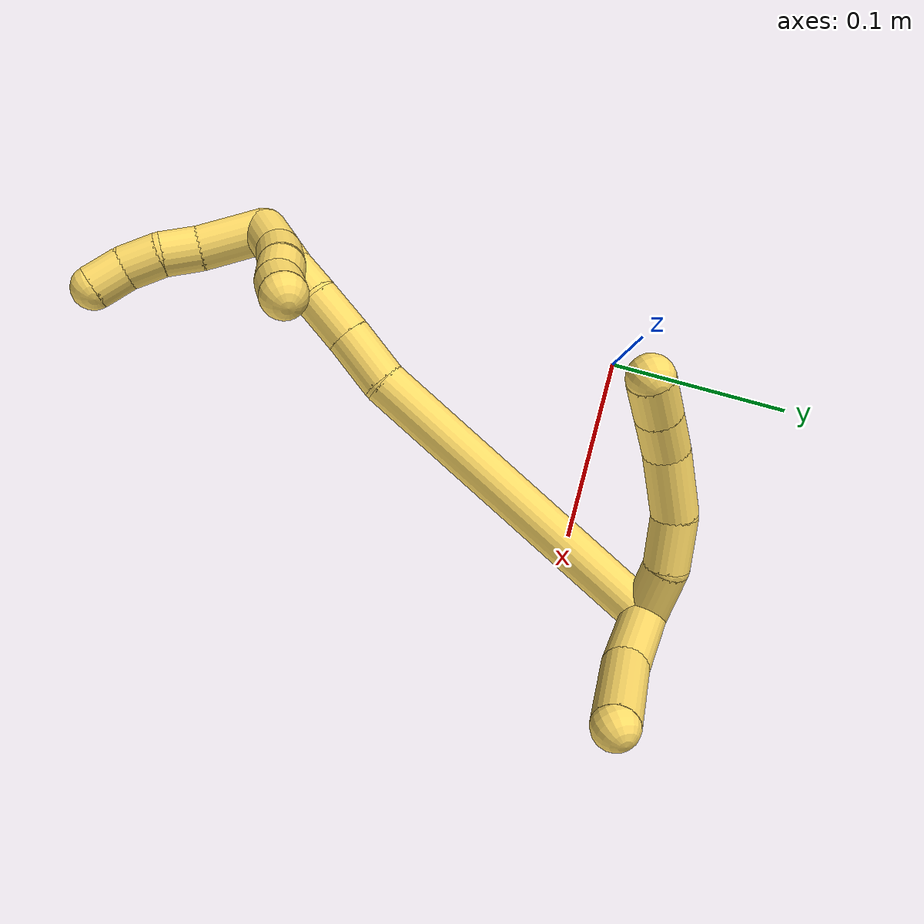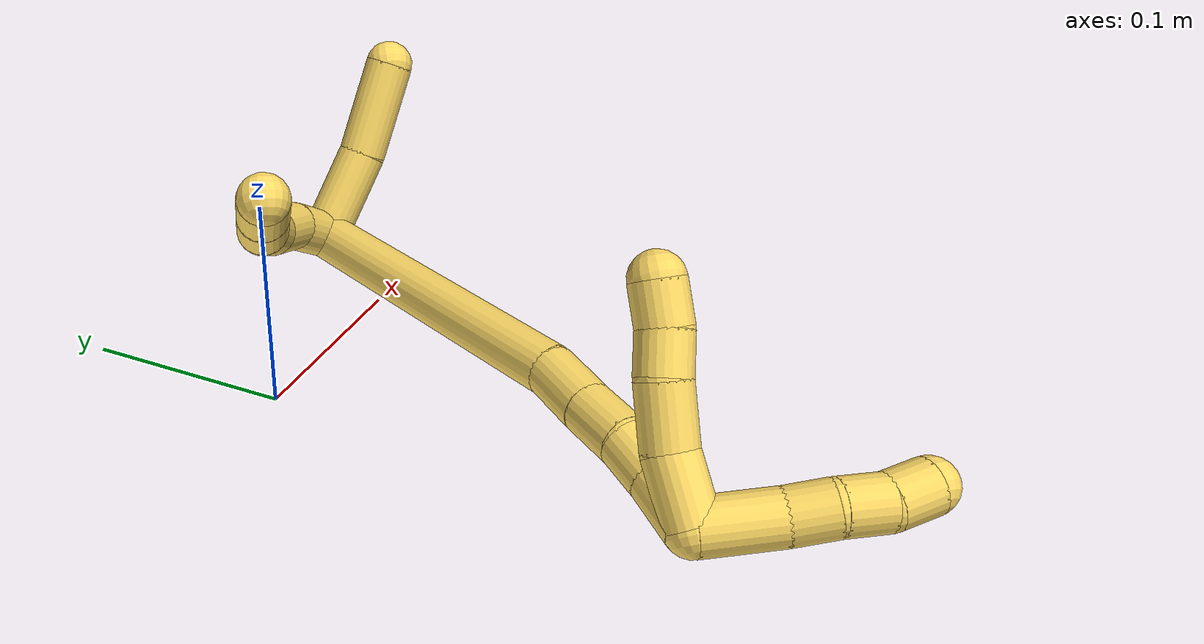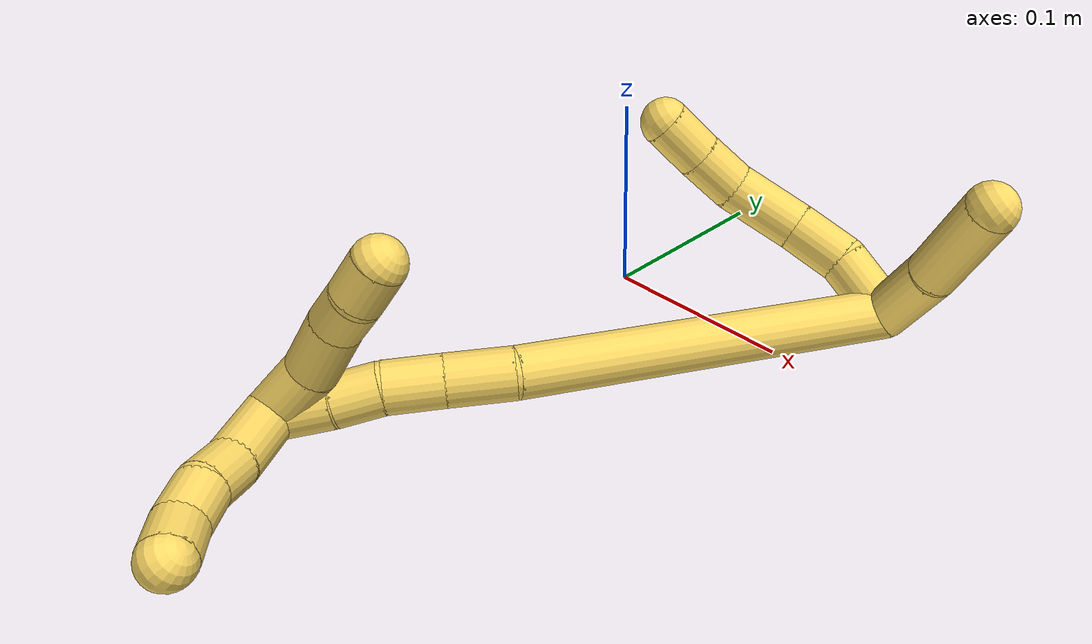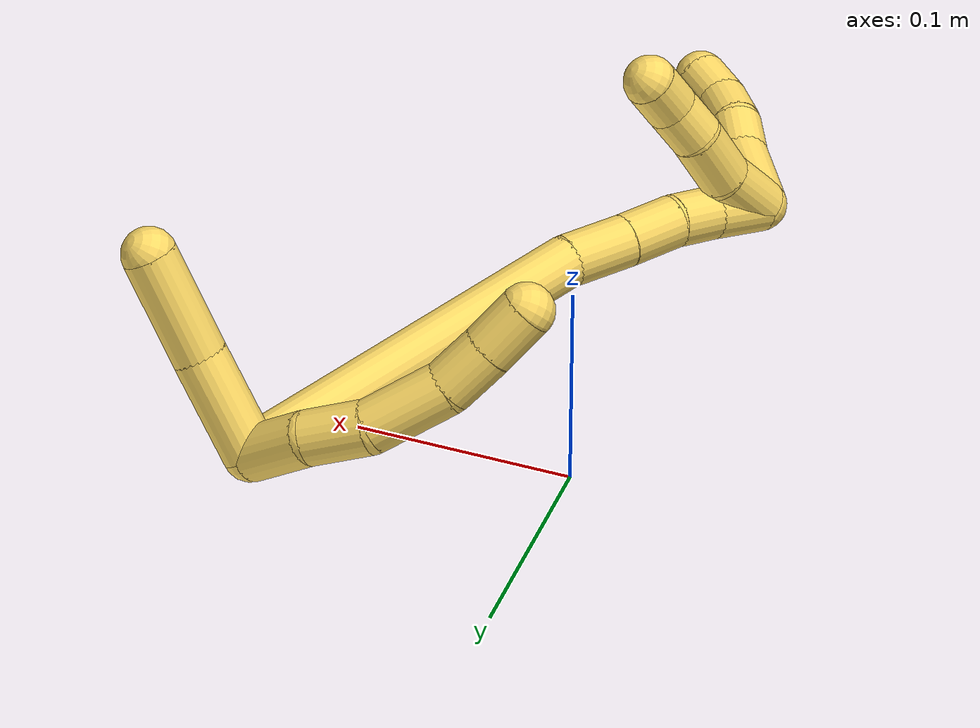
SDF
<sdf version="1.7">
 <world name="default">
  <model name="5">
   <static>0</static>
   <link name="5">
    <collision name="collision-cylinder-e_1_2_8">
     <pose>-0.016672 0.001153 -0.00145 -2.46978 -1.46012 2.39773</pose>
     <geometry><cylinder><radius>0.0125</radius><length>0.033548</length></cylinder></geometry>
     <surface>
      <friction><ode><mu>1.16</mu><mu2>1.16</mu2><slip1>0</slip1><slip2>0</slip2></ode></friction>
      <contact><ode><kp>1e+06</kp><kd>1</kd><max_vel>0</max_vel><min_depth>0.001</min_depth></ode></contact>
     </surface>
    </collision>
    <visual name="visual-cylinder-e_1_2_8">
     <pose>-0.016672 0.001153 -0.00145 -2.46978 -1.46012 2.39773</pose>
     <geometry><cylinder><radius>0.0125</radius><length>0.033548</length></cylinder></geometry>
     <material><ambient>1 0.858824 0.4 1</ambient></material>
    </visual>
    <collision name="collision-cylinder-e_2_8_9">
     <pose>-0.0472 0.001958 -0.008203 3.07613 -1.20457 -3.04641</pose>
     <geometry><cylinder><radius>0.0125</radius><length>0.029683</length></cylinder></geometry>
     <surface>
      <friction><ode><mu>1.16</mu><mu2>1.16</mu2><slip1>0</slip1><slip2>0</slip2></ode></friction>
      <contact><ode><kp>1e+06</kp><kd>1</kd><max_vel>0</max_vel><min_depth>0.001</min_depth></ode></contact>
     </surface>
    </collision>
    <visual name="visual-cylinder-e_2_8_9">
     <pose>-0.0472 0.001958 -0.008203 3.07613 -1.20457 -3.04641</pose>
     <geometry><cylinder><radius>0.0125</radius><length>0.029683</length></cylinder></geometry>
     <material><ambient>1 0.858824 0.4 1</ambient></material>
    </visual>
    <collision name="collision-cylinder-e_3_9_10">
     <pose>-0.078005 -0.004856 -0.019312 2.30238 -1.097 -1.88035</pose>
     <geometry><cylinder><radius>0.0125</radius><length>0.038092</length></cylinder></geometry>
     <surface>
      <friction><ode><mu>1.16</mu><mu2>1.16</mu2><slip1>0</slip1><slip2>0</slip2></ode></friction>
      <contact><ode><kp>1e+06</kp><kd>1</kd><max_vel>0</max_vel><min_depth>0.001</min_depth></ode></contact>
     </surface>
    </collision>
    <visual name="visual-cylinder-e_3_9_10">
     <pose>-0.078005 -0.004856 -0.019312 2.30238 -1.097 -1.88035</pose>
     <geometry><cylinder><radius>0.0125</radius><length>0.038092</length></cylinder></geometry>
     <material><ambient>1 0.858824 0.4 1</ambient></material>
    </visual>
    <collision name="collision-cylinder-e_4_10_11">
     <pose>-0.105591 -0.017262 -0.026244 1.75836 -1.05398 -1.22508</pose>
     <geometry><cylinder><radius>0.0125</radius><length>0.024471</length></cylinder></geometry>
     <surface>
      <friction><ode><mu>1.16</mu><mu2>1.16</mu2><slip1>0</slip1><slip2>0</slip2></ode></friction>
      <contact><ode><kp>1e+06</kp><kd>1</kd><max_vel>0</max_vel><min_depth>0.001</min_depth></ode></contact>
     </surface>
    </collision>
    <visual name="visual-cylinder-e_4_10_11">
     <pose>-0.105591 -0.017262 -0.026244 1.75836 -1.05398 -1.22508</pose>
     <geometry><cylinder><radius>0.0125</radius><length>0.024471</length></cylinder></geometry>
     <material><ambient>1 0.858824 0.4 1</ambient></material>
    </visual>
    <collision name="collision-cylinder-e_5_11_6">
     <pose>-0.126686 -0.029272 -0.027891 1.65609 -1.04321 -1.11853</pose>
     <geometry><cylinder><radius>0.0125</radius><length>0.024206</length></cylinder></geometry>
     <surface>
      <friction><ode><mu>1.16</mu><mu2>1.16</mu2><slip1>0</slip1><slip2>0</slip2></ode></friction>
      <contact><ode><kp>1e+06</kp><kd>1</kd><max_vel>0</max_vel><min_depth>0.001</min_depth></ode></contact>
     </surface>
    </collision>
    <visual name="visual-cylinder-e_5_11_6">
     <pose>-0.126686 -0.029272 -0.027891 1.65609 -1.04321 -1.11853</pose>
     <geometry><cylinder><radius>0.0125</radius><length>0.024206</length></cylinder></geometry>
     <material><ambient>1 0.858824 0.4 1</ambient></material>
    </visual>
    <collision name="collision-cylinder-e_1_2_12">
     <pose>-0.001969 -0.015327 0.019028 0.678107 -0.080395 -0.028366</pose>
     <geometry><cylinder><radius>0.0125</radius><length>0.049025</length></cylinder></geometry>
     <surface>
      <friction><ode><mu>1.16</mu><mu2>1.16</mu2><slip1>0</slip1><slip2>0</slip2></ode></friction>
      <contact><ode><kp>1e+06</kp><kd>1</kd><max_vel>0</max_vel><min_depth>0.001</min_depth></ode></contact>
     </surface>
    </collision>
    <visual name="visual-cylinder-e_1_2_12">
     <pose>-0.001969 -0.015327 0.019028 0.678107 -0.080395 -0.028366</pose>
     <geometry><cylinder><radius>0.0125</radius><length>0.049025</length></cylinder></geometry>
     <material><ambient>1 0.858824 0.4 1</ambient></material>
    </visual>
    <collision name="collision-cylinder-e_2_12_5">
     <pose>-0.008603 -0.044479 0.058953 0.584433 -0.184088 -0.055522</pose>
     <geometry><cylinder><radius>0.0125</radius><length>0.050975</length></cylinder></geometry>
     <surface>
      <friction><ode><mu>1.16</mu><mu2>1.16</mu2><slip1>0</slip1><slip2>0</slip2></ode></friction>
      <contact><ode><kp>1e+06</kp><kd>1</kd><max_vel>0</max_vel><min_depth>0.001</min_depth></ode></contact>
     </surface>
    </collision>
    <visual name="visual-cylinder-e_2_12_5">
     <pose>-0.008603 -0.044479 0.058953 0.584433 -0.184088 -0.055522</pose>
     <geometry><cylinder><radius>0.0125</radius><length>0.050975</length></cylinder></geometry>
     <material><ambient>1 0.858824 0.4 1</ambient></material>
    </visual>
    <collision name="collision-cylinder-e_1_2_13">
     <pose>-0.033154 -0.065895 -0.059872 2.30834 -0.356475 -0.773203</pose>
     <geometry><cylinder><radius>0.0125</radius><length>0.190012</length></cylinder></geometry>
     <surface>
      <friction><ode><mu>1.16</mu><mu2>1.16</mu2><slip1>0</slip1><slip2>0</slip2></ode></friction>
      <contact><ode><kp>1e+06</kp><kd>1</kd><max_vel>0</max_vel><min_depth>0.001</min_depth></ode></contact>
     </surface>
    </collision>
    <visual name="visual-cylinder-e_1_2_13">
     <pose>-0.033154 -0.065895 -0.059872 2.30834 -0.356475 -0.773203</pose>
     <geometry><cylinder><radius>0.0125</radius><length>0.190012</length></cylinder></geometry>
     <material><ambient>1 0.858824 0.4 1</ambient></material>
    </visual>
    <collision name="collision-cylinder-e_2_13_14">
     <pose>-0.073118 -0.140391 -0.131292 2.50143 -0.441764 -1.1908</pose>
     <geometry><cylinder><radius>0.0125</radius><length>0.031854</length></cylinder></geometry>
     <surface>
      <friction><ode><mu>1.16</mu><mu2>1.16</mu2><slip1>0</slip1><slip2>0</slip2></ode></friction>
      <contact><ode><kp>1e+06</kp><kd>1</kd><max_vel>0</max_vel><min_depth>0.001</min_depth></ode></contact>
     </surface>
    </collision>
    <visual name="visual-cylinder-e_2_13_14">
     <pose>-0.073118 -0.140391 -0.131292 2.50143 -0.441764 -1.1908</pose>
     <geometry><cylinder><radius>0.0125</radius><length>0.031854</length></cylinder></geometry>
     <material><ambient>1 0.858824 0.4 1</ambient></material>
    </visual>
    <collision name="collision-cylinder-e_3_14_15">
     <pose>-0.085658 -0.156952 -0.152622 2.45858 -0.426443 -1.09424</pose>
     <geometry><cylinder><radius>0.0125</radius><length>0.027706</length></cylinder></geometry>
     <surface>
      <friction><ode><mu>1.16</mu><mu2>1.16</mu2><slip1>0</slip1><slip2>0</slip2></ode></friction>
      <contact><ode><kp>1e+06</kp><kd>1</kd><max_vel>0</max_vel><min_depth>0.001</min_depth></ode></contact>
     </surface>
    </collision>
    <visual name="visual-cylinder-e_3_14_15">
     <pose>-0.085658 -0.156952 -0.152622 2.45858 -0.426443 -1.09424</pose>
     <geometry><cylinder><radius>0.0125</radius><length>0.027706</length></cylinder></geometry>
     <material><ambient>1 0.858824 0.4 1</ambient></material>
    </visual>
    <collision name="collision-cylinder-e_4_15_16">
     <pose>-0.094602 -0.170493 -0.171556 2.59389 -0.291277 -0.962427</pose>
     <geometry><cylinder><radius>0.0125</radius><length>0.02238</length></cylinder></geometry>
     <surface>
      <friction><ode><mu>1.16</mu><mu2>1.16</mu2><slip1>0</slip1><slip2>0</slip2></ode></friction>
      <contact><ode><kp>1e+06</kp><kd>1</kd><max_vel>0</max_vel><min_depth>0.001</min_depth></ode></contact>
     </surface>
    </collision>
    <visual name="visual-cylinder-e_4_15_16">
     <pose>-0.094602 -0.170493 -0.171556 2.59389 -0.291277 -0.962427</pose>
     <geometry><cylinder><radius>0.0125</radius><length>0.02238</length></cylinder></geometry>
     <material><ambient>1 0.858824 0.4 1</ambient></material>
    </visual>
    <collision name="collision-cylinder-e_5_16_1">
     <pose>-0.102882 -0.182209 -0.192255 2.65329 -0.369651 -1.2876</pose>
     <geometry><cylinder><radius>0.0125</radius><length>0.028048</length></cylinder></geometry>
     <surface>
      <friction><ode><mu>1.16</mu><mu2>1.16</mu2><slip1>0</slip1><slip2>0</slip2></ode></friction>
      <contact><ode><kp>1e+06</kp><kd>1</kd><max_vel>0</max_vel><min_depth>0.001</min_depth></ode></contact>
     </surface>
    </collision>
    <visual name="visual-cylinder-e_5_16_1">
     <pose>-0.102882 -0.182209 -0.192255 2.65329 -0.369651 -1.2876</pose>
     <geometry><cylinder><radius>0.0125</radius><length>0.028048</length></cylinder></geometry>
     <material><ambient>1 0.858824 0.4 1</ambient></material>
    </visual>
    <collision name="collision-cylinder-e_1_1_17">
     <pose>-0.100565 -0.205397 -0.20465 1.62038 0.408155 0.428298</pose>
     <geometry><cylinder><radius>0.0125</radius><length>0.037205</length></cylinder></geometry>
     <surface>
      <friction><ode><mu>1.16</mu><mu2>1.16</mu2><slip1>0</slip1><slip2>0</slip2></ode></friction>
      <contact><ode><kp>1e+06</kp><kd>1</kd><max_vel>0</max_vel><min_depth>0.001</min_depth></ode></contact>
     </surface>
    </collision>
    <visual name="visual-cylinder-e_1_1_17">
     <pose>-0.100565 -0.205397 -0.20465 1.62038 0.408155 0.428298</pose>
     <geometry><cylinder><radius>0.0125</radius><length>0.037205</length></cylinder></geometry>
     <material><ambient>1 0.858824 0.4 1</ambient></material>
    </visual>
    <collision name="collision-cylinder-e_2_17_18">
     <pose>-0.090513 -0.232647 -0.205543 1.57535 0.25591 0.257065</pose>
     <geometry><cylinder><radius>0.0125</radius><length>0.021079</length></cylinder></geometry>
     <surface>
      <friction><ode><mu>1.16</mu><mu2>1.16</mu2><slip1>0</slip1><slip2>0</slip2></ode></friction>
      <contact><ode><kp>1e+06</kp><kd>1</kd><max_vel>0</max_vel><min_depth>0.001</min_depth></ode></contact>
     </surface>
    </collision>
    <visual name="visual-cylinder-e_2_17_18">
     <pose>-0.090513 -0.232647 -0.205543 1.57535 0.25591 0.257065</pose>
     <geometry><cylinder><radius>0.0125</radius><length>0.021079</length></cylinder></geometry>
     <material><ambient>1 0.858824 0.4 1</ambient></material>
    </visual>
    <collision name="collision-cylinder-e_3_18_19">
     <pose>-0.082622 -0.252053 -0.206088 1.62492 0.515292 0.542611</pose>
     <geometry><cylinder><radius>0.0125</radius><length>0.021201</length></cylinder></geometry>
     <surface>
      <friction><ode><mu>1.16</mu><mu2>1.16</mu2><slip1>0</slip1><slip2>0</slip2></ode></friction>
      <contact><ode><kp>1e+06</kp><kd>1</kd><max_vel>0</max_vel><min_depth>0.001</min_depth></ode></contact>
     </surface>
    </collision>
    <visual name="visual-cylinder-e_3_18_19">
     <pose>-0.082622 -0.252053 -0.206088 1.62492 0.515292 0.542611</pose>
     <geometry><cylinder><radius>0.0125</radius><length>0.021201</length></cylinder></geometry>
     <material><ambient>1 0.858824 0.4 1</ambient></material>
    </visual>
    <collision name="collision-cylinder-e_4_19_4">
     <pose>-0.071883 -0.269685 -0.204615 1.34078 0.567629 0.454561</pose>
     <geometry><cylinder><radius>0.0125</radius><length>0.020516</length></cylinder></geometry>
     <surface>
      <friction><ode><mu>1.16</mu><mu2>1.16</mu2><slip1>0</slip1><slip2>0</slip2></ode></friction>
      <contact><ode><kp>1e+06</kp><kd>1</kd><max_vel>0</max_vel><min_depth>0.001</min_depth></ode></contact>
     </surface>
    </collision>
    <visual name="visual-cylinder-e_4_19_4">
     <pose>-0.071883 -0.269685 -0.204615 1.34078 0.567629 0.454561</pose>
     <geometry><cylinder><radius>0.0125</radius><length>0.020516</length></cylinder></geometry>
     <material><ambient>1 0.858824 0.4 1</ambient></material>
    </visual>
    <collision name="collision-cylinder-e_1_1_20">
     <pose>-0.110116 -0.187584 -0.188656 -0.050117 -0.141949 0.003564</pose>
     <geometry><cylinder><radius>0.0125</radius><length>0.030642</length></cylinder></geometry>
     <surface>
      <friction><ode><mu>1.16</mu><mu2>1.16</mu2><slip1>0</slip1><slip2>0</slip2></ode></friction>
      <contact><ode><kp>1e+06</kp><kd>1</kd><max_vel>0</max_vel><min_depth>0.001</min_depth></ode></contact>
     </surface>
    </collision>
    <visual name="visual-cylinder-e_1_1_20">
     <pose>-0.110116 -0.187584 -0.188656 -0.050117 -0.141949 0.003564</pose>
     <geometry><cylinder><radius>0.0125</radius><length>0.030642</length></cylinder></geometry>
     <material><ambient>1 0.858824 0.4 1</ambient></material>
    </visual>
    <collision name="collision-cylinder-e_2_20_21">
     <pose>-0.115965 -0.18929 -0.159545 0.174787 -0.254027 -0.022376</pose>
     <geometry><cylinder><radius>0.0125</radius><length>0.029299</length></cylinder></geometry>
     <surface>
      <friction><ode><mu>1.16</mu><mu2>1.16</mu2><slip1>0</slip1><slip2>0</slip2></ode></friction>
      <contact><ode><kp>1e+06</kp><kd>1</kd><max_vel>0</max_vel><min_depth>0.001</min_depth></ode></contact>
     </surface>
    </collision>
    <visual name="visual-cylinder-e_2_20_21">
     <pose>-0.115965 -0.18929 -0.159545 0.174787 -0.254027 -0.022376</pose>
     <geometry><cylinder><radius>0.0125</radius><length>0.029299</length></cylinder></geometry>
     <material><ambient>1 0.858824 0.4 1</ambient></material>
    </visual>
    <collision name="collision-cylinder-e_3_21_22">
     <pose>-0.120558 -0.194388 -0.135951 0.266778 -0.091067 -0.012228</pose>
     <geometry><cylinder><radius>0.0125</radius><length>0.020052</length></cylinder></geometry>
     <surface>
      <friction><ode><mu>1.16</mu><mu2>1.16</mu2><slip1>0</slip1><slip2>0</slip2></ode></friction>
      <contact><ode><kp>1e+06</kp><kd>1</kd><max_vel>0</max_vel><min_depth>0.001</min_depth></ode></contact>
     </surface>
    </collision>
    <visual name="visual-cylinder-e_3_21_22">
     <pose>-0.120558 -0.194388 -0.135951 0.266778 -0.091067 -0.012228</pose>
     <geometry><cylinder><radius>0.0125</radius><length>0.020052</length></cylinder></geometry>
     <material><ambient>1 0.858824 0.4 1</ambient></material>
    </visual>
    <collision name="collision-cylinder-e_4_22_3">
     <pose>-0.123661 -0.197995 -0.116607 0.100065 -0.220814 -0.011102</pose>
     <geometry><cylinder><radius>0.0125</radius><length>0.020008</length></cylinder></geometry>
     <surface>
      <friction><ode><mu>1.16</mu><mu2>1.16</mu2><slip1>0</slip1><slip2>0</slip2></ode></friction>
      <contact><ode><kp>1e+06</kp><kd>1</kd><max_vel>0</max_vel><min_depth>0.001</min_depth></ode></contact>
     </surface>
    </collision>
    <visual name="visual-cylinder-e_4_22_3">
     <pose>-0.123661 -0.197995 -0.116607 0.100065 -0.220814 -0.011102</pose>
     <geometry><cylinder><radius>0.0125</radius><length>0.020008</length></cylinder></geometry>
     <material><ambient>1 0.858824 0.4 1</ambient></material>
    </visual>
    <collision name="collision-sphere-3">
     <pose>-0.125852 -0.19897 -0.106895 0 -0 0</pose>
     <geometry><sphere><radius>0.0125</radius></sphere></geometry>
     <surface>
      <friction><ode><mu>1.16</mu><mu2>1.16</mu2><slip1>0</slip1><slip2>0</slip2></ode></friction>
      <contact><ode><kp>1e+06</kp><kd>1</kd><max_vel>0</max_vel><min_depth>0.001</min_depth></ode></contact>
     </surface>
    </collision>
    <visual name="visual-sphere-3">
     <pose>-0.125852 -0.19897 -0.106895 0 -0 0</pose>
     <geometry><sphere><radius>0.0125</radius></sphere></geometry>
     <material><ambient>1 0.858824 0.4 1</ambient></material>
    </visual>
    <collision name="collision-sphere-22">
     <pose>-0.12147 -0.19702 -0.12632 0 -0 0</pose>
     <geometry><sphere><radius>0.0125</radius></sphere></geometry>
     <surface>
      <friction><ode><mu>1.16</mu><mu2>1.16</mu2><slip1>0</slip1><slip2>0</slip2></ode></friction>
      <contact><ode><kp>1e+06</kp><kd>1</kd><max_vel>0</max_vel><min_depth>0.001</min_depth></ode></contact>
     </surface>
    </collision>
    <visual name="visual-sphere-22">
     <pose>-0.12147 -0.19702 -0.12632 0 -0 0</pose>
     <geometry><sphere><radius>0.0125</radius></sphere></geometry>
     <material><ambient>1 0.858824 0.4 1</ambient></material>
    </visual>
    <collision name="collision-sphere-21">
     <pose>-0.119646 -0.191756 -0.145582 0 -0 0</pose>
     <geometry><sphere><radius>0.0125</radius></sphere></geometry>
     <surface>
      <friction><ode><mu>1.16</mu><mu2>1.16</mu2><slip1>0</slip1><slip2>0</slip2></ode></friction>
      <contact><ode><kp>1e+06</kp><kd>1</kd><max_vel>0</max_vel><min_depth>0.001</min_depth></ode></contact>
     </surface>
    </collision>
    <visual name="visual-sphere-21">
     <pose>-0.119646 -0.191756 -0.145582 0 -0 0</pose>
     <geometry><sphere><radius>0.0125</radius></sphere></geometry>
     <material><ambient>1 0.858824 0.4 1</ambient></material>
    </visual>
    <collision name="collision-sphere-20">
     <pose>-0.112283 -0.186825 -0.173508 0 -0 0</pose>
     <geometry><sphere><radius>0.0125</radius></sphere></geometry>
     <surface>
      <friction><ode><mu>1.16</mu><mu2>1.16</mu2><slip1>0</slip1><slip2>0</slip2></ode></friction>
      <contact><ode><kp>1e+06</kp><kd>1</kd><max_vel>0</max_vel><min_depth>0.001</min_depth></ode></contact>
     </surface>
    </collision>
    <visual name="visual-sphere-20">
     <pose>-0.112283 -0.186825 -0.173508 0 -0 0</pose>
     <geometry><sphere><radius>0.0125</radius></sphere></geometry>
     <material><ambient>1 0.858824 0.4 1</ambient></material>
    </visual>
    <collision name="collision-sphere-4">
     <pose>-0.066368 -0.278106 -0.202643 0 -0 0</pose>
     <geometry><sphere><radius>0.0125</radius></sphere></geometry>
     <surface>
      <friction><ode><mu>1.16</mu><mu2>1.16</mu2><slip1>0</slip1><slip2>0</slip2></ode></friction>
      <contact><ode><kp>1e+06</kp><kd>1</kd><max_vel>0</max_vel><min_depth>0.001</min_depth></ode></contact>
     </surface>
    </collision>
    <visual name="visual-sphere-4">
     <pose>-0.066368 -0.278106 -0.202643 0 -0 0</pose>
     <geometry><sphere><radius>0.0125</radius></sphere></geometry>
     <material><ambient>1 0.858824 0.4 1</ambient></material>
    </visual>
    <collision name="collision-sphere-6">
     <pose>-0.137143 -0.035344 -0.02841 0 -0 0</pose>
     <geometry><sphere><radius>0.0125</radius></sphere></geometry>
     <surface>
      <friction><ode><mu>1.16</mu><mu2>1.16</mu2><slip1>0</slip1><slip2>0</slip2></ode></friction>
      <contact><ode><kp>1e+06</kp><kd>1</kd><max_vel>0</max_vel><min_depth>0.001</min_depth></ode></contact>
     </surface>
    </collision>
    <visual name="visual-sphere-6">
     <pose>-0.137143 -0.035344 -0.02841 0 -0 0</pose>
     <geometry><sphere><radius>0.0125</radius></sphere></geometry>
     <material><ambient>1 0.858824 0.4 1</ambient></material>
    </visual>
    <collision name="collision-sphere-11">
     <pose>-0.116228 -0.023201 -0.027372 0 -0 0</pose>
     <geometry><sphere><radius>0.0125</radius></sphere></geometry>
     <surface>
      <friction><ode><mu>1.16</mu><mu2>1.16</mu2><slip1>0</slip1><slip2>0</slip2></ode></friction>
      <contact><ode><kp>1e+06</kp><kd>1</kd><max_vel>0</max_vel><min_depth>0.001</min_depth></ode></contact>
     </surface>
    </collision>
    <visual name="visual-sphere-11">
     <pose>-0.116228 -0.023201 -0.027372 0 -0 0</pose>
     <geometry><sphere><radius>0.0125</radius></sphere></geometry>
     <material><ambient>1 0.858824 0.4 1</ambient></material>
    </visual>
    <collision name="collision-sphere-10">
     <pose>-0.094953 -0.011322 -0.025117 0 -0 0</pose>
     <geometry><sphere><radius>0.0125</radius></sphere></geometry>
     <surface>
      <friction><ode><mu>1.16</mu><mu2>1.16</mu2><slip1>0</slip1><slip2>0</slip2></ode></friction>
      <contact><ode><kp>1e+06</kp><kd>1</kd><max_vel>0</max_vel><min_depth>0.001</min_depth></ode></contact>
     </surface>
    </collision>
    <visual name="visual-sphere-10">
     <pose>-0.094953 -0.011322 -0.025117 0 -0 0</pose>
     <geometry><sphere><radius>0.0125</radius></sphere></geometry>
     <material><ambient>1 0.858824 0.4 1</ambient></material>
    </visual>
    <collision name="collision-sphere-9">
     <pose>-0.061057 0.001611 -0.013507 0 -0 0</pose>
     <geometry><sphere><radius>0.0125</radius></sphere></geometry>
     <surface>
      <friction><ode><mu>1.16</mu><mu2>1.16</mu2><slip1>0</slip1><slip2>0</slip2></ode></friction>
      <contact><ode><kp>1e+06</kp><kd>1</kd><max_vel>0</max_vel><min_depth>0.001</min_depth></ode></contact>
     </surface>
    </collision>
    <visual name="visual-sphere-9">
     <pose>-0.061057 0.001611 -0.013507 0 -0 0</pose>
     <geometry><sphere><radius>0.0125</radius></sphere></geometry>
     <material><ambient>1 0.858824 0.4 1</ambient></material>
    </visual>
    <collision name="collision-sphere-2">
     <geometry><sphere><radius>0.0125</radius></sphere></geometry>
     <surface>
      <friction><ode><mu>1.16</mu><mu2>1.16</mu2><slip1>0</slip1><slip2>0</slip2></ode></friction>
      <contact><ode><kp>1e+06</kp><kd>1</kd><max_vel>0</max_vel><min_depth>0.001</min_depth></ode></contact>
     </surface>
    </collision>
    <visual name="visual-sphere-2">
     <geometry><sphere><radius>0.0125</radius></sphere></geometry>
     <material><ambient>1 0.858824 0.4 1</ambient></material>
    </visual>
    <collision name="collision-sphere-19">
     <pose>-0.077398 -0.261264 -0.206587 0 -0 0</pose>
     <geometry><sphere><radius>0.0125</radius></sphere></geometry>
     <surface>
      <friction><ode><mu>1.16</mu><mu2>1.16</mu2><slip1>0</slip1><slip2>0</slip2></ode></friction>
      <contact><ode><kp>1e+06</kp><kd>1</kd><max_vel>0</max_vel><min_depth>0.001</min_depth></ode></contact>
     </surface>
    </collision>
    <visual name="visual-sphere-19">
     <pose>-0.077398 -0.261264 -0.206587 0 -0 0</pose>
     <geometry><sphere><radius>0.0125</radius></sphere></geometry>
     <material><ambient>1 0.858824 0.4 1</ambient></material>
    </visual>
    <collision name="collision-sphere-8">
     <pose>-0.033343 0.002306 -0.0029 0 -0 0</pose>
     <geometry><sphere><radius>0.0125</radius></sphere></geometry>
     <surface>
      <friction><ode><mu>1.16</mu><mu2>1.16</mu2><slip1>0</slip1><slip2>0</slip2></ode></friction>
      <contact><ode><kp>1e+06</kp><kd>1</kd><max_vel>0</max_vel><min_depth>0.001</min_depth></ode></contact>
     </surface>
    </collision>
    <visual name="visual-sphere-8">
     <pose>-0.033343 0.002306 -0.0029 0 -0 0</pose>
     <geometry><sphere><radius>0.0125</radius></sphere></geometry>
     <material><ambient>1 0.858824 0.4 1</ambient></material>
    </visual>
    <collision name="collision-sphere-12">
     <pose>-0.003937 -0.030655 0.038055 0 -0 0</pose>
     <geometry><sphere><radius>0.0125</radius></sphere></geometry>
     <surface>
      <friction><ode><mu>1.16</mu><mu2>1.16</mu2><slip1>0</slip1><slip2>0</slip2></ode></friction>
      <contact><ode><kp>1e+06</kp><kd>1</kd><max_vel>0</max_vel><min_depth>0.001</min_depth></ode></contact>
     </surface>
    </collision>
    <visual name="visual-sphere-12">
     <pose>-0.003937 -0.030655 0.038055 0 -0 0</pose>
     <geometry><sphere><radius>0.0125</radius></sphere></geometry>
     <material><ambient>1 0.858824 0.4 1</ambient></material>
    </visual>
    <collision name="collision-sphere-5">
     <pose>-0.013268 -0.058304 0.079852 0 -0 0</pose>
     <geometry><sphere><radius>0.0125</radius></sphere></geometry>
     <surface>
      <friction><ode><mu>1.16</mu><mu2>1.16</mu2><slip1>0</slip1><slip2>0</slip2></ode></friction>
      <contact><ode><kp>1e+06</kp><kd>1</kd><max_vel>0</max_vel><min_depth>0.001</min_depth></ode></contact>
     </surface>
    </collision>
    <visual name="visual-sphere-5">
     <pose>-0.013268 -0.058304 0.079852 0 -0 0</pose>
     <geometry><sphere><radius>0.0125</radius></sphere></geometry>
     <material><ambient>1 0.858824 0.4 1</ambient></material>
    </visual>
    <collision name="collision-sphere-13">
     <pose>-0.066309 -0.131791 -0.119745 0 -0 0</pose>
     <geometry><sphere><radius>0.0125</radius></sphere></geometry>
     <surface>
      <friction><ode><mu>1.16</mu><mu2>1.16</mu2><slip1>0</slip1><slip2>0</slip2></ode></friction>
      <contact><ode><kp>1e+06</kp><kd>1</kd><max_vel>0</max_vel><min_depth>0.001</min_depth></ode></contact>
     </surface>
    </collision>
    <visual name="visual-sphere-13">
     <pose>-0.066309 -0.131791 -0.119745 0 -0 0</pose>
     <geometry><sphere><radius>0.0125</radius></sphere></geometry>
     <material><ambient>1 0.858824 0.4 1</ambient></material>
    </visual>
    <collision name="collision-sphere-14">
     <pose>-0.079928 -0.148992 -0.142839 0 -0 0</pose>
     <geometry><sphere><radius>0.0125</radius></sphere></geometry>
     <surface>
      <friction><ode><mu>1.16</mu><mu2>1.16</mu2><slip1>0</slip1><slip2>0</slip2></ode></friction>
      <contact><ode><kp>1e+06</kp><kd>1</kd><max_vel>0</max_vel><min_depth>0.001</min_depth></ode></contact>
     </surface>
    </collision>
    <visual name="visual-sphere-14">
     <pose>-0.079928 -0.148992 -0.142839 0 -0 0</pose>
     <geometry><sphere><radius>0.0125</radius></sphere></geometry>
     <material><ambient>1 0.858824 0.4 1</ambient></material>
    </visual>
    <collision name="collision-sphere-15">
     <pose>-0.091388 -0.164912 -0.162405 0 -0 0</pose>
     <geometry><sphere><radius>0.0125</radius></sphere></geometry>
     <surface>
      <friction><ode><mu>1.16</mu><mu2>1.16</mu2><slip1>0</slip1><slip2>0</slip2></ode></friction>
      <contact><ode><kp>1e+06</kp><kd>1</kd><max_vel>0</max_vel><min_depth>0.001</min_depth></ode></contact>
     </surface>
    </collision>
    <visual name="visual-sphere-15">
     <pose>-0.091388 -0.164912 -0.162405 0 -0 0</pose>
     <geometry><sphere><radius>0.0125</radius></sphere></geometry>
     <material><ambient>1 0.858824 0.4 1</ambient></material>
    </visual>
    <collision name="collision-sphere-16">
     <pose>-0.097815 -0.176075 -0.180707 0 -0 0</pose>
     <geometry><sphere><radius>0.0125</radius></sphere></geometry>
     <surface>
      <friction><ode><mu>1.16</mu><mu2>1.16</mu2><slip1>0</slip1><slip2>0</slip2></ode></friction>
      <contact><ode><kp>1e+06</kp><kd>1</kd><max_vel>0</max_vel><min_depth>0.001</min_depth></ode></contact>
     </surface>
    </collision>
    <visual name="visual-sphere-16">
     <pose>-0.097815 -0.176075 -0.180707 0 -0 0</pose>
     <geometry><sphere><radius>0.0125</radius></sphere></geometry>
     <material><ambient>1 0.858824 0.4 1</ambient></material>
    </visual>
    <collision name="collision-sphere-1">
     <pose>-0.107948 -0.188344 -0.203804 0 -0 0</pose>
     <geometry><sphere><radius>0.0125</radius></sphere></geometry>
     <surface>
      <friction><ode><mu>1.16</mu><mu2>1.16</mu2><slip1>0</slip1><slip2>0</slip2></ode></friction>
      <contact><ode><kp>1e+06</kp><kd>1</kd><max_vel>0</max_vel><min_depth>0.001</min_depth></ode></contact>
     </surface>
    </collision>
    <visual name="visual-sphere-1">
     <pose>-0.107948 -0.188344 -0.203804 0 -0 0</pose>
     <geometry><sphere><radius>0.0125</radius></sphere></geometry>
     <material><ambient>1 0.858824 0.4 1</ambient></material>
    </visual>
    <collision name="collision-sphere-18">
     <pose>-0.087846 -0.242843 -0.205589 0 -0 0</pose>
     <geometry><sphere><radius>0.0125</radius></sphere></geometry>
     <surface>
      <friction><ode><mu>1.16</mu><mu2>1.16</mu2><slip1>0</slip1><slip2>0</slip2></ode></friction>
      <contact><ode><kp>1e+06</kp><kd>1</kd><max_vel>0</max_vel><min_depth>0.001</min_depth></ode></contact>
     </surface>
    </collision>
    <visual name="visual-sphere-18">
     <pose>-0.087846 -0.242843 -0.205589 0 -0 0</pose>
     <geometry><sphere><radius>0.0125</radius></sphere></geometry>
     <material><ambient>1 0.858824 0.4 1</ambient></material>
    </visual>
    <collision name="collision-sphere-17">
     <pose>-0.093181 -0.222451 -0.205496 0 -0 0</pose>
     <geometry><sphere><radius>0.0125</radius></sphere></geometry>
     <surface>
      <friction><ode><mu>1.16</mu><mu2>1.16</mu2><slip1>0</slip1><slip2>0</slip2></ode></friction>
      <contact><ode><kp>1e+06</kp><kd>1</kd><max_vel>0</max_vel><min_depth>0.001</min_depth></ode></contact>
     </surface>
    </collision>
    <visual name="visual-sphere-17">
     <pose>-0.093181 -0.222451 -0.205496 0 -0 0</pose>
     <geometry><sphere><radius>0.0125</radius></sphere></geometry>
     <material><ambient>1 0.858824 0.4 1</ambient></material>
    </visual>
    <inertial>
     <pose>-0.063548 -0.102775 -0.084605 0 -0 0</pose>
     <mass>0.75</mass>
     <inertia>
      <ixx>2.5e-05</ixx>
      <ixy>0</ixy>
      <ixz>0</ixz>
      <iyy>-0.000548</iyy>
      <iyz>0</iyz>
      <izz>0.000656</izz>
     </inertia>
    </inertial>
   </link>
   <pose>0.130462 0.049311 0.013303 -0.498196 0.685925 -0.04381</pose>
  </model>
 </world>
</sdf>
